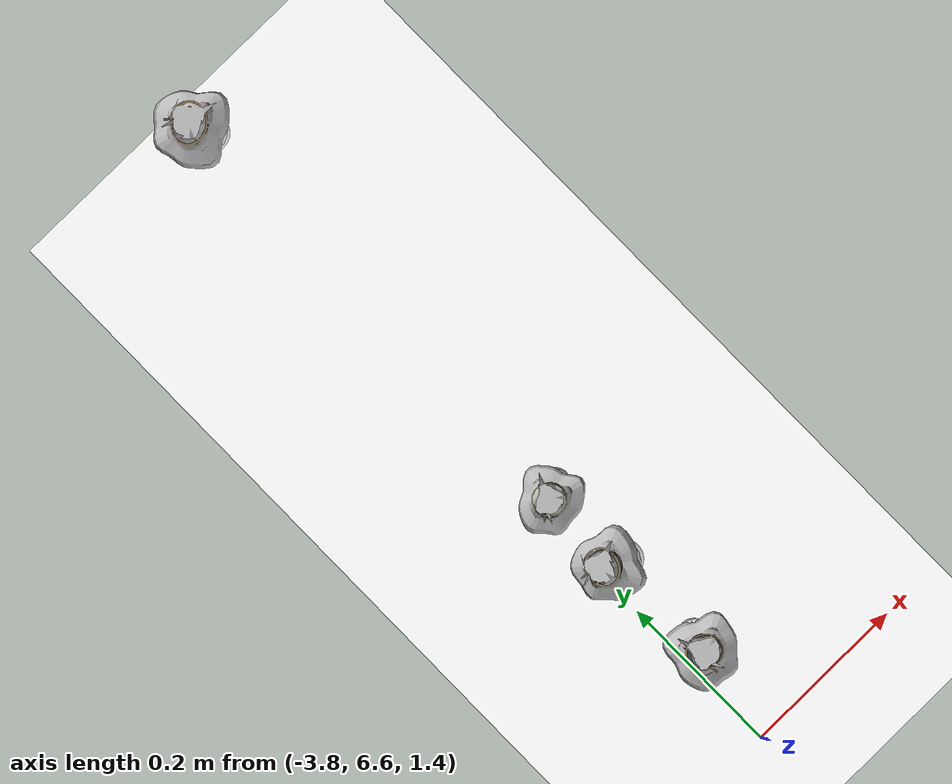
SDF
<sdf version="1.11">
 <world name="peach_orchard">
  <model name="ground">
   <static>true</static>
   <link name="link">
    <visual name="soil">
     <geometry><plane><normal>0 0 1</normal><size>32 22</size></plane></geometry>
     <material>
      <ambient>1 1 1 1</ambient>
      <diffuse>1 1 1 1</diffuse>
      <specular>0.1 0.1 0.1 1</specular>
      <pbr>
       <metal>
        <albedo_map>textures/soil_albedo.png</albedo_map>
        <normal_map type="tangent">textures/soil_normal.png</normal_map>
        <roughness>0.95</roughness>
        <metalness>0</metalness>
       </metal>
      </pbr>
     </material>
    </visual>
    <collision name="c_soil">
     <geometry><plane><normal>0 0 1</normal><size>32 22</size></plane></geometry>
    </collision>
   </link>
  </model>
  <model name="peach_tree_r1_t6_01">
   <pose>-3.78 6.71674 1.40138 0 0.0110626 -1.92091</pose>
   <static>true</static>
   <link name="bag">
    <visual name="bag_mesh">
     <pose>0 0 0.0490425 0 0 -0</pose>
     <geometry>
      <mesh><uri>model://peach_sim/meshes/bagged_peach.glb</uri><scale>1.03119 1.16256 1.1146</scale></mesh>
     </geometry>
    </visual>
    <visual name="body">
     <pose>0 0 0.0310425 0 0 0</pose>
     <geometry><ellipsoid><radii>0.0386698 0.0302267 0.0335259</radii></ellipsoid></geometry>
     <material>
      <ambient>1 1 1 1</ambient>
      <diffuse>1 1 1 1</diffuse>
      <specular>0.1 0.1 0.1 1</specular>
      <pbr>
       <metal>
        <albedo_map>textures/paper_bag_albedo.png</albedo_map>
        <normal_map type="tangent">textures/paper_bag_normal.png</normal_map>
        <roughness>0.72</roughness>
        <metalness>0</metalness>
       </metal>
      </pbr>
     </material>
    </visual>
    <visual name="bottom_fold">
     <pose>0 0 0.012 0 0 0.35</pose>
     <geometry><box><size>0.0599382 0.0347607 0.022</size></box></geometry>
     <material>
      <ambient>1 1 1 1</ambient>
      <diffuse>1 1 1 1</diffuse>
      <specular>0.1 0.1 0.1 1</specular>
      <pbr>
       <metal>
        <albedo_map>textures/paper_bag_albedo.png</albedo_map>
        <normal_map type="tangent">textures/paper_bag_normal.png</normal_map>
        <roughness>0.8</roughness>
        <metalness>0</metalness>
       </metal>
      </pbr>
     </material>
    </visual>
    <visual name="fruit">
     <pose>0 0 0.0188676 0 0 0</pose>
     <geometry><sphere><radius>0.0258623</radius></sphere></geometry>
     <material>
      <ambient>1 1 1 1</ambient>
      <diffuse>1 1 1 1</diffuse>
      <specular>0.1 0.1 0.1 1</specular>
      <pbr>
       <metal>
        <albedo_map>textures/fruit_skin_albedo.png</albedo_map>
        <normal_map type="tangent">textures/fruit_skin_normal.png</normal_map>
        <roughness>0.55</roughness>
        <metalness>0</metalness>
       </metal>
      </pbr>
     </material>
    </visual>
    <visual name="neck">
     <pose>0 0 0.0710849 0 0 0</pose>
     <geometry><cylinder><radius>0.013</radius><length>0.018</length></cylinder></geometry>
     <material>
      <ambient>1 1 1 1</ambient>
      <diffuse>1 1 1 1</diffuse>
      <specular>0.1 0.1 0.1 1</specular>
      <pbr>
       <metal>
        <albedo_map>textures/paper_bag_albedo.png</albedo_map>
        <normal_map type="tangent">textures/paper_bag_normal.png</normal_map>
        <roughness>0.75</roughness>
        <metalness>0</metalness>
       </metal>
      </pbr>
     </material>
    </visual>
    <visual name="gather">
     <pose>0 0 0.0520849 0 0 0</pose>
     <geometry><cylinder><radius>0.019</radius><length>0.02</length></cylinder></geometry>
     <material>
      <ambient>1 1 1 1</ambient>
      <diffuse>1 1 1 1</diffuse>
      <specular>0.1 0.1 0.1 1</specular>
      <pbr>
       <metal>
        <albedo_map>textures/paper_bag_albedo.png</albedo_map>
        <normal_map type="tangent">textures/paper_bag_normal.png</normal_map>
        <roughness>0.8</roughness>
        <metalness>0</metalness>
       </metal>
      </pbr>
     </material>
    </visual>
    <visual name="inner_paper">
     <pose>0 0 0.0760849 0 0 0</pose>
     <geometry><cylinder><radius>0.01</radius><length>0.008</length></cylinder></geometry>
     <material>
      <ambient>0.180392 0.14902 0.133333 1</ambient>
      <diffuse>0.180392 0.14902 0.133333 1</diffuse>
      <specular>0.1 0.1 0.1 1</specular>
     </material>
    </visual>
    <visual name="wire_0">
     <pose>0 0 0.0660849 0 0 0</pose>
     <geometry><cylinder><radius>0.0205</radius><length>0.0035</length></cylinder></geometry>
     <material>
      <ambient>0.25 0.25 0.25 1</ambient>
      <diffuse>0.25 0.25 0.25 1</diffuse>
      <specular>0.1 0.1 0.1 1</specular>
     </material>
    </visual>
    <visual name="wire_1">
     <pose>0 0 0.0730849 0 0 0</pose>
     <geometry><cylinder><radius>0.0205</radius><length>0.0035</length></cylinder></geometry>
     <material>
      <ambient>0.25 0.25 0.25 1</ambient>
      <diffuse>0.25 0.25 0.25 1</diffuse>
      <specular>0.1 0.1 0.1 1</specular>
     </material>
    </visual>
    <visual name="wire_tail">
     <pose>0.01 0 0.0740849 0 0.521618 0</pose>
     <geometry><cylinder><radius>0.0012</radius><length>0.026</length></cylinder></geometry>
     <material>
      <ambient>0.25 0.25 0.25 1</ambient>
      <diffuse>0.25 0.25 0.25 1</diffuse>
      <specular>0.1 0.1 0.1 1</specular>
     </material>
    </visual>
    <collision name="c_body">
     <pose>0 0 0.0310425 0 0 0</pose>
     <geometry><cylinder><radius>0.0386698</radius><length>0.0620849</length></cylinder></geometry>
    </collision>
   </link>
  </model>
  <model name="peach_tree_r1_t6_02">
   <pose>-3.78 6.85766 1.33613 0 0.193459 2.76076</pose>
   <static>true</static>
   <link name="bag">
    <visual name="bag_mesh">
     <pose>0 0 0.0449793 0 0 0</pose>
     <geometry>
      <mesh><uri>model://peach_sim/meshes/bagged_peach.glb</uri><scale>0.993856 1.20519 1.02226</scale></mesh>
     </geometry>
    </visual>
    <visual name="body">
     <pose>0 0 0.0269793 0 0 0</pose>
     <geometry><ellipsoid><radii>0.0372696 0.0313349 0.0291376</radii></ellipsoid></geometry>
     <material>
      <ambient>1 1 1 1</ambient>
      <diffuse>1 1 1 1</diffuse>
      <specular>0.1 0.1 0.1 1</specular>
      <pbr>
       <metal>
        <albedo_map>textures/paper_bag_albedo.png</albedo_map>
        <normal_map type="tangent">textures/paper_bag_normal.png</normal_map>
        <roughness>0.72</roughness>
        <metalness>0</metalness>
       </metal>
      </pbr>
     </material>
    </visual>
    <visual name="bottom_fold">
     <pose>0 0 0.012 0 0 0.35</pose>
     <geometry><box><size>0.0577679 0.0360351 0.022</size></box></geometry>
     <material>
      <ambient>1 1 1 1</ambient>
      <diffuse>1 1 1 1</diffuse>
      <specular>0.1 0.1 0.1 1</specular>
      <pbr>
       <metal>
        <albedo_map>textures/paper_bag_albedo.png</albedo_map>
        <normal_map type="tangent">textures/paper_bag_normal.png</normal_map>
        <roughness>0.8</roughness>
        <metalness>0</metalness>
       </metal>
      </pbr>
     </material>
    </visual>
    <visual name="fruit">
     <pose>0 0 0.0215924 0 0 0</pose>
     <geometry><sphere><radius>0.0286961</radius></sphere></geometry>
     <material>
      <ambient>1 1 1 1</ambient>
      <diffuse>1 1 1 1</diffuse>
      <specular>0.1 0.1 0.1 1</specular>
      <pbr>
       <metal>
        <albedo_map>textures/fruit_skin_albedo.png</albedo_map>
        <normal_map type="tangent">textures/fruit_skin_normal.png</normal_map>
        <roughness>0.55</roughness>
        <metalness>0</metalness>
       </metal>
      </pbr>
     </material>
    </visual>
    <visual name="neck">
     <pose>0 0 0.0629586 0 0 0</pose>
     <geometry><cylinder><radius>0.013</radius><length>0.018</length></cylinder></geometry>
     <material>
      <ambient>1 1 1 1</ambient>
      <diffuse>1 1 1 1</diffuse>
      <specular>0.1 0.1 0.1 1</specular>
      <pbr>
       <metal>
        <albedo_map>textures/paper_bag_albedo.png</albedo_map>
        <normal_map type="tangent">textures/paper_bag_normal.png</normal_map>
        <roughness>0.75</roughness>
        <metalness>0</metalness>
       </metal>
      </pbr>
     </material>
    </visual>
    <visual name="gather">
     <pose>0 0 0.0439586 0 0 0</pose>
     <geometry><cylinder><radius>0.019</radius><length>0.02</length></cylinder></geometry>
     <material>
      <ambient>1 1 1 1</ambient>
      <diffuse>1 1 1 1</diffuse>
      <specular>0.1 0.1 0.1 1</specular>
      <pbr>
       <metal>
        <albedo_map>textures/paper_bag_albedo.png</albedo_map>
        <normal_map type="tangent">textures/paper_bag_normal.png</normal_map>
        <roughness>0.8</roughness>
        <metalness>0</metalness>
       </metal>
      </pbr>
     </material>
    </visual>
    <visual name="inner_paper">
     <pose>0 0 0.0679586 0 0 0</pose>
     <geometry><cylinder><radius>0.01</radius><length>0.008</length></cylinder></geometry>
     <material>
      <ambient>0.180392 0.14902 0.133333 1</ambient>
      <diffuse>0.180392 0.14902 0.133333 1</diffuse>
      <specular>0.1 0.1 0.1 1</specular>
     </material>
    </visual>
    <visual name="wire_0">
     <pose>0 0 0.0579586 0 0 0</pose>
     <geometry><cylinder><radius>0.0205</radius><length>0.0035</length></cylinder></geometry>
     <material>
      <ambient>0.25 0.25 0.25 1</ambient>
      <diffuse>0.25 0.25 0.25 1</diffuse>
      <specular>0.1 0.1 0.1 1</specular>
     </material>
    </visual>
    <visual name="wire_1">
     <pose>0 0 0.0649586 0 0 0</pose>
     <geometry><cylinder><radius>0.0205</radius><length>0.0035</length></cylinder></geometry>
     <material>
      <ambient>0.25 0.25 0.25 1</ambient>
      <diffuse>0.25 0.25 0.25 1</diffuse>
      <specular>0.1 0.1 0.1 1</specular>
     </material>
    </visual>
    <visual name="wire_tail">
     <pose>0.01 0 0.0659586 0 0.521618 0</pose>
     <geometry><cylinder><radius>0.0012</radius><length>0.026</length></cylinder></geometry>
     <material>
      <ambient>0.25 0.25 0.25 1</ambient>
      <diffuse>0.25 0.25 0.25 1</diffuse>
      <specular>0.1 0.1 0.1 1</specular>
     </material>
    </visual>
    <collision name="c_body">
     <pose>0 0 0.0269793 0 0 0</pose>
     <geometry><cylinder><radius>0.0372696</radius><length>0.0539586</length></cylinder></geometry>
    </collision>
   </link>
  </model>
  <model name="peach_tree_r1_t6_03">
   <pose>-3.78 6.96165 1.3152 0 0.0404129 -2.65602</pose>
   <static>true</static>
   <link name="bag">
    <visual name="bag_mesh">
     <pose>0 0 0.0381196 0 0 -0</pose>
     <geometry>
      <mesh><uri>model://peach_sim/meshes/bagged_peach.glb</uri><scale>1.00239 1.07843 0.866354</scale></mesh>
     </geometry>
    </visual>
    <visual name="body">
     <pose>0 0 0.0201196 0 0 0</pose>
     <geometry><ellipsoid><radii>0.0375898 0.0280391 0.0217292</radii></ellipsoid></geometry>
     <material>
      <ambient>1 1 1 1</ambient>
      <diffuse>1 1 1 1</diffuse>
      <specular>0.1 0.1 0.1 1</specular>
      <pbr>
       <metal>
        <albedo_map>textures/paper_bag_albedo.png</albedo_map>
        <normal_map type="tangent">textures/paper_bag_normal.png</normal_map>
        <roughness>0.72</roughness>
        <metalness>0</metalness>
       </metal>
      </pbr>
     </material>
    </visual>
    <visual name="bottom_fold">
     <pose>0 0 0.012 0 0 0.35</pose>
     <geometry><box><size>0.0582641 0.032245 0.022</size></box></geometry>
     <material>
      <ambient>1 1 1 1</ambient>
      <diffuse>1 1 1 1</diffuse>
      <specular>0.1 0.1 0.1 1</specular>
      <pbr>
       <metal>
        <albedo_map>textures/paper_bag_albedo.png</albedo_map>
        <normal_map type="tangent">textures/paper_bag_normal.png</normal_map>
        <roughness>0.8</roughness>
        <metalness>0</metalness>
       </metal>
      </pbr>
     </material>
    </visual>
    <visual name="fruit">
     <pose>0 0 0.0178712 0 0 0</pose>
     <geometry><sphere><radius>0.024826</radius></sphere></geometry>
     <material>
      <ambient>1 1 1 1</ambient>
      <diffuse>1 1 1 1</diffuse>
      <specular>0.1 0.1 0.1 1</specular>
      <pbr>
       <metal>
        <albedo_map>textures/fruit_skin_albedo.png</albedo_map>
        <normal_map type="tangent">textures/fruit_skin_normal.png</normal_map>
        <roughness>0.55</roughness>
        <metalness>0</metalness>
       </metal>
      </pbr>
     </material>
    </visual>
    <visual name="neck">
     <pose>0 0 0.0492392 0 0 0</pose>
     <geometry><cylinder><radius>0.013</radius><length>0.018</length></cylinder></geometry>
     <material>
      <ambient>1 1 1 1</ambient>
      <diffuse>1 1 1 1</diffuse>
      <specular>0.1 0.1 0.1 1</specular>
      <pbr>
       <metal>
        <albedo_map>textures/paper_bag_albedo.png</albedo_map>
        <normal_map type="tangent">textures/paper_bag_normal.png</normal_map>
        <roughness>0.75</roughness>
        <metalness>0</metalness>
       </metal>
      </pbr>
     </material>
    </visual>
    <visual name="gather">
     <pose>0 0 0.0302392 0 0 0</pose>
     <geometry><cylinder><radius>0.019</radius><length>0.02</length></cylinder></geometry>
     <material>
      <ambient>1 1 1 1</ambient>
      <diffuse>1 1 1 1</diffuse>
      <specular>0.1 0.1 0.1 1</specular>
      <pbr>
       <metal>
        <albedo_map>textures/paper_bag_albedo.png</albedo_map>
        <normal_map type="tangent">textures/paper_bag_normal.png</normal_map>
        <roughness>0.8</roughness>
        <metalness>0</metalness>
       </metal>
      </pbr>
     </material>
    </visual>
    <visual name="inner_paper">
     <pose>0 0 0.0542392 0 0 0</pose>
     <geometry><cylinder><radius>0.01</radius><length>0.008</length></cylinder></geometry>
     <material>
      <ambient>0.180392 0.14902 0.133333 1</ambient>
      <diffuse>0.180392 0.14902 0.133333 1</diffuse>
      <specular>0.1 0.1 0.1 1</specular>
     </material>
    </visual>
    <visual name="wire_0">
     <pose>0 0 0.0442392 0 0 0</pose>
     <geometry><cylinder><radius>0.0205</radius><length>0.0035</length></cylinder></geometry>
     <material>
      <ambient>0.25 0.25 0.25 1</ambient>
      <diffuse>0.25 0.25 0.25 1</diffuse>
      <specular>0.1 0.1 0.1 1</specular>
     </material>
    </visual>
    <visual name="wire_1">
     <pose>0 0 0.0512392 0 0 0</pose>
     <geometry><cylinder><radius>0.0205</radius><length>0.0035</length></cylinder></geometry>
     <material>
      <ambient>0.25 0.25 0.25 1</ambient>
      <diffuse>0.25 0.25 0.25 1</diffuse>
      <specular>0.1 0.1 0.1 1</specular>
     </material>
    </visual>
    <visual name="wire_tail">
     <pose>0.01 0 0.0522392 0 0.521618 0</pose>
     <geometry><cylinder><radius>0.0012</radius><length>0.026</length></cylinder></geometry>
     <material>
      <ambient>0.25 0.25 0.25 1</ambient>
      <diffuse>0.25 0.25 0.25 1</diffuse>
      <specular>0.1 0.1 0.1 1</specular>
     </material>
    </visual>
    <collision name="c_body">
     <pose>0 0 0.0201196 0 0 0</pose>
     <geometry><cylinder><radius>0.0375898</radius><length>0.0402392</length></cylinder></geometry>
    </collision>
   </link>
  </model>
  <model name="peach_tree_r1_t6_06">
   <pose>-3.78 7.53809 1.45 0 0.0029151 2.17251</pose>
   <static>true</static>
   <link name="bag">
    <visual name="bag_mesh">
     <pose>0 0 0.0432654 0 0 0</pose>
     <geometry>
      <mesh><uri>model://peach_sim/meshes/bagged_peach.glb</uri><scale>1.07516 1.30215 0.983304</scale></mesh>
     </geometry>
    </visual>
    <visual name="body">
     <pose>0 0 0.0252654 0 0 0</pose>
     <geometry><ellipsoid><radii>0.0403185 0.033856 0.0272866</radii></ellipsoid></geometry>
     <material>
      <ambient>1 1 1 1</ambient>
      <diffuse>1 1 1 1</diffuse>
      <specular>0.1 0.1 0.1 1</specular>
      <pbr>
       <metal>
        <albedo_map>textures/paper_bag_albedo.png</albedo_map>
        <normal_map type="tangent">textures/paper_bag_normal.png</normal_map>
        <roughness>0.72</roughness>
        <metalness>0</metalness>
       </metal>
      </pbr>
     </material>
    </visual>
    <visual name="bottom_fold">
     <pose>0 0 0.012 0 0 0.35</pose>
     <geometry><box><size>0.0624937 0.0389344 0.022</size></box></geometry>
     <material>
      <ambient>1 1 1 1</ambient>
      <diffuse>1 1 1 1</diffuse>
      <specular>0.1 0.1 0.1 1</specular>
      <pbr>
       <metal>
        <albedo_map>textures/paper_bag_albedo.png</albedo_map>
        <normal_map type="tangent">textures/paper_bag_normal.png</normal_map>
        <roughness>0.8</roughness>
        <metalness>0</metalness>
       </metal>
      </pbr>
     </material>
    </visual>
    <visual name="fruit">
     <pose>0 0 0.0195018 0 0 0</pose>
     <geometry><sphere><radius>0.0265218</radius></sphere></geometry>
     <material>
      <ambient>1 1 1 1</ambient>
      <diffuse>1 1 1 1</diffuse>
      <specular>0.1 0.1 0.1 1</specular>
      <pbr>
       <metal>
        <albedo_map>textures/fruit_skin_albedo.png</albedo_map>
        <normal_map type="tangent">textures/fruit_skin_normal.png</normal_map>
        <roughness>0.55</roughness>
        <metalness>0</metalness>
       </metal>
      </pbr>
     </material>
    </visual>
    <visual name="neck">
     <pose>0 0 0.0595308 0 0 0</pose>
     <geometry><cylinder><radius>0.013</radius><length>0.018</length></cylinder></geometry>
     <material>
      <ambient>1 1 1 1</ambient>
      <diffuse>1 1 1 1</diffuse>
      <specular>0.1 0.1 0.1 1</specular>
      <pbr>
       <metal>
        <albedo_map>textures/paper_bag_albedo.png</albedo_map>
        <normal_map type="tangent">textures/paper_bag_normal.png</normal_map>
        <roughness>0.75</roughness>
        <metalness>0</metalness>
       </metal>
      </pbr>
     </material>
    </visual>
    <visual name="gather">
     <pose>0 0 0.0405308 0 0 0</pose>
     <geometry><cylinder><radius>0.019</radius><length>0.02</length></cylinder></geometry>
     <material>
      <ambient>1 1 1 1</ambient>
      <diffuse>1 1 1 1</diffuse>
      <specular>0.1 0.1 0.1 1</specular>
      <pbr>
       <metal>
        <albedo_map>textures/paper_bag_albedo.png</albedo_map>
        <normal_map type="tangent">textures/paper_bag_normal.png</normal_map>
        <roughness>0.8</roughness>
        <metalness>0</metalness>
       </metal>
      </pbr>
     </material>
    </visual>
    <visual name="inner_paper">
     <pose>0 0 0.0645308 0 0 0</pose>
     <geometry><cylinder><radius>0.01</radius><length>0.008</length></cylinder></geometry>
     <material>
      <ambient>0.180392 0.14902 0.133333 1</ambient>
      <diffuse>0.180392 0.14902 0.133333 1</diffuse>
      <specular>0.1 0.1 0.1 1</specular>
     </material>
    </visual>
    <visual name="wire_0">
     <pose>0 0 0.0545308 0 0 0</pose>
     <geometry><cylinder><radius>0.0205</radius><length>0.0035</length></cylinder></geometry>
     <material>
      <ambient>0.25 0.25 0.25 1</ambient>
      <diffuse>0.25 0.25 0.25 1</diffuse>
      <specular>0.1 0.1 0.1 1</specular>
     </material>
    </visual>
    <visual name="wire_1">
     <pose>0 0 0.0615308 0 0 0</pose>
     <geometry><cylinder><radius>0.0205</radius><length>0.0035</length></cylinder></geometry>
     <material>
      <ambient>0.25 0.25 0.25 1</ambient>
      <diffuse>0.25 0.25 0.25 1</diffuse>
      <specular>0.1 0.1 0.1 1</specular>
     </material>
    </visual>
    <visual name="wire_tail">
     <pose>0.01 0 0.0625308 0 0.521618 0</pose>
     <geometry><cylinder><radius>0.0012</radius><length>0.026</length></cylinder></geometry>
     <material>
      <ambient>0.25 0.25 0.25 1</ambient>
      <diffuse>0.25 0.25 0.25 1</diffuse>
      <specular>0.1 0.1 0.1 1</specular>
     </material>
    </visual>
    <collision name="c_body">
     <pose>0 0 0.0252654 0 0 0</pose>
     <geometry><cylinder><radius>0.0403185</radius><length>0.0505308</length></cylinder></geometry>
    </collision>
   </link>
  </model>
 </world>
</sdf>
